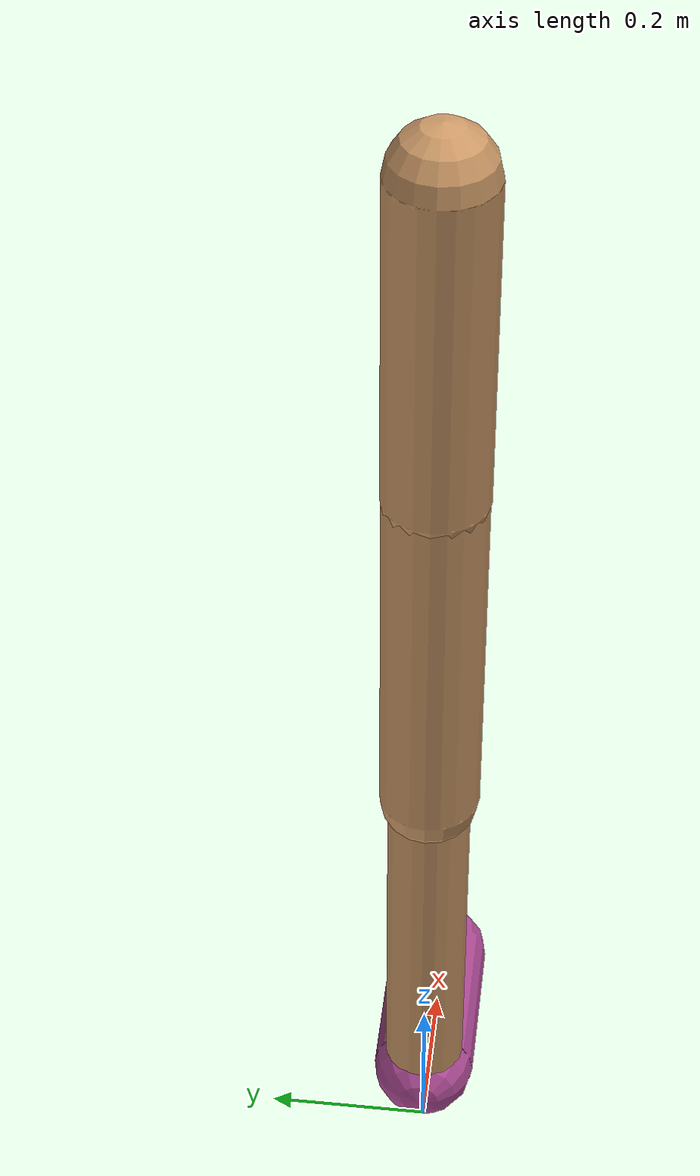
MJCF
<?xml version="1.0" encoding="utf-8"?>
<mujoco model="walker2d">
	<compiler angle="degree" coordinate="global" inertiafromgeom="true"></compiler>
	<default>
		<joint armature="0.01" damping="0.077023618143381" limited="true"></joint>
		<geom conaffinity="0" condim="3" contype="1" density="1000" friction="0.7071261435294689 0.07555963250002362 0.09263151044151606" rgba="0.8 0.6 .4 1"></geom>
	</default>
	<option integrator="RK4" timestep="0.002"></option>
	<worldbody>
		<body name="torso">
			<joint armature="0" axis="1 0 0" damping="0.0" limited="false" name="ignorex" pos="0 0 0" stiffness="0.0" type="slide"></joint>
			<joint armature="0" axis="0 0 1" damping="0.0" limited="false" name="ignorez" pos="0 0 0" ref="1.25" stiffness="0.0" type="slide"></joint>
			<joint armature="0" axis="0 1 0" damping="0.0" limited="false" name="ignorey" pos="0 0 0" stiffness="0.0" type="hinge"></joint>
			<geom fromto="0 0 1.45 0 0 1.05" name="torso_geom" size="0.060901011854330826" type="capsule"></geom>
			<body name="thigh">
				<joint axis="0 -1 0" name="thigh_joint" pos="0 0 1.05" range="-150 0" type="hinge"></joint>
				<geom fromto="0 0 1.05 0 0 0.6" name="thigh_geom" size="0.059579835616349275" type="capsule"></geom>
				<body name="leg">
					<joint axis="0 -1 0" name="leg_joint" pos="0 0 0.6" range="-150 0" type="hinge"></joint>
					<geom fromto="0 0 0.6 0 0 0.1" name="leg_geom" size="0.049396513578791164" type="capsule"></geom>
					<body name="foot">
						<joint axis="0 -1 0" name="foot_joint" pos="0 0 0.1" range="-45 45" type="hinge"></joint>
						<geom fromto="-0.0 0 0.1 0.2 0 0.1" name="foot_geom" size="0.04974215944058812" type="capsule"></geom>
					</body>
				</body>
			</body>
			<body name="thigh_left">
				<joint axis="0 -1 0" name="thigh_left_joint" pos="0 0 1.05" range="-150 0" type="hinge"></joint>
				<geom fromto="0 0 1.05 0 0 0.6" name="thigh_left_geom" rgba=".7 .3 .6 1" size="0.04153860054256833" type="capsule"></geom>
				<body name="leg_left">
					<joint axis="0 -1 0" name="leg_left_joint" pos="0 0 0.6" range="-150 0" type="hinge"></joint>
					<geom fromto="0 0 0.6 0 0 0.1" name="leg_left_geom" rgba=".7 .3 .6 1" size="0.04513365794347559" type="capsule"></geom>
					<body name="foot_left">
						<joint axis="0 -1 0" name="foot_left_joint" pos="0 0 0.1" range="-45 45" type="hinge"></joint>
						<geom fromto="-0.0 0 0.1 0.2 0 0.1" name="foot_left_geom" rgba=".7 .3 .6 1" size="0.06376351610197124" type="capsule"></geom>
					</body>
				</body>
			</body>
		</body>
	</worldbody>
	<actuator>
		<motor ctrllimited="true" ctrlrange="-1.0 1.0" gear="100" joint="thigh_joint"></motor>
		<motor ctrllimited="true" ctrlrange="-1.0 1.0" gear="100" joint="leg_joint"></motor>
		<motor ctrllimited="true" ctrlrange="-1.0 1.0" gear="100" joint="foot_joint"></motor>
		<motor ctrllimited="true" ctrlrange="-1.0 1.0" gear="100" joint="thigh_left_joint"></motor>
		<motor ctrllimited="true" ctrlrange="-1.0 1.0" gear="100" joint="leg_left_joint"></motor>
		<motor ctrllimited="true" ctrlrange="-1.0 1.0" gear="100" joint="foot_left_joint"></motor>
	</actuator>
</mujoco>
